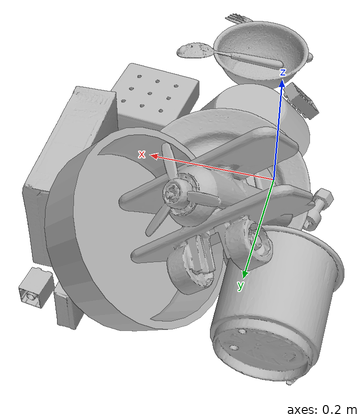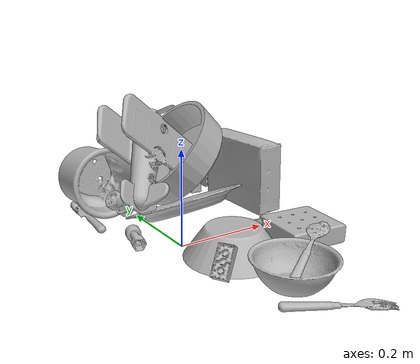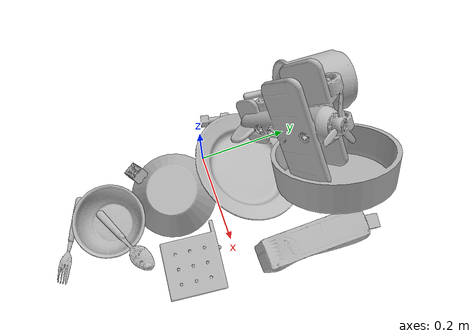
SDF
<sdf version="1.4">
  <world name="default">
    <light name="light1" type="point">
      <pose>0 0 1 0 0 0</pose>
      <diffuse>3 3 3 1</diffuse>
      <specular>3 3 3 1</specular>
    </light>
    <light name="light2" type="point">
      <pose>0 0.5 2 0 0 0</pose>
      <diffuse>1 1 1 1</diffuse>
      <specular>1 1 1 1</specular>
    </light>
    <light name="light3" type="point">
      <pose>0 0.5 2 0 0 0</pose>
      <diffuse>3 3 3 1</diffuse>
      <specular>3 3 3 1</specular>
    </light>
    <scene>
      <ambient>0.7 0.7 0.7</ambient>
    </scene>
    <model name="plate1">
      <link name="link_plate1">
        <collision name="default">
          <geometry>
            <mesh>
              <uri>model://plate/collision_meshes/collision.obj</uri>
              <scale>1.0 1.0 1.0</scale>
            </mesh>
          </geometry>
          <surface>
            <friction>
              <ode>
                <mu>0.5</mu>
                <mu2>0.5</mu2>
              </ode>
            </friction>
          <contact>
        <ode>
            <max_vel>0</max_vel>
            <min_depth>0.0001</min_depth>
            <kp>1e8</kp>
        </ode>
    </contact></surface>
        </collision>
        <visual name="default">
          <geometry>
            <mesh>
              <uri>model://plate/visual_meshes/visual.dae</uri>
              <scale>1.0 1.0 1.0</scale>
            </mesh>
          </geometry>
        </visual>
        <inertial>
          <mass>0.1516857147216797</mass>
          <pose>-0.0006044649053364992 0.00027825761935673654 -0.0010561972158029675 0.002218765199568956 -0.003225488596237322 0.4526153800388047</pose>
          <inertia>
            <ixx>0.00070958876</ixx>
            <iyy>0.0007028018</iyy>
            <izz>0.00138785</izz>
            <ixy>0</ixy>
            <ixz>0</ixz>
            <iyz>0</iyz>
          </inertia>
        </inertial>
      </link>
      <pose>0.06245071068406105 0.08986993879079819 0.0458495207130909 -0.3634399214350289 0.22294625340855276 0.7212696434519148</pose>
    </model>
    <model name="plate2">
      <link name="link_plate2">
        <collision name="default">
          <geometry>
            <mesh>
              <uri>model://pan_tefal/collision_meshes/collision.obj</uri>
              <scale>1.0 1.0 1.0</scale>
            </mesh>
          </geometry>
          <surface>
            <friction>
              <ode>
                <mu>0.5</mu>
                <mu2>0.5</mu2>
              </ode>
            </friction>
          <contact>
        <ode>
            <max_vel>0</max_vel>
            <min_depth>0.0001</min_depth>
            <kp>1e8</kp>
        </ode>
    </contact></surface>
        </collision>
        <visual name="default">
          <geometry>
            <mesh>
              <uri>model://pan_tefal/visual_meshes/visual.dae</uri>
              <scale>1.0 1.0 1.0</scale>
            </mesh>
          </geometry>
        </visual>
        <inertial>
          <mass>1.0862284898757935</mass>
          <pose>-0.00018001910939347 3.2794348953757435e-05 -0.00851493515074253 0.0008190334899032376 -0.0003301482999058744 -0.3318501395419688</pose>
          <inertia>
            <ixx>0.0074981838</ixx>
            <iyy>0.007546525</iyy>
            <izz>0.013802713</izz>
            <ixy>0</ixy>
            <ixz>0</ixz>
            <iyz>0</iyz>
          </inertia>
        </inertial>
      </link>
      <pose>0.1341967135667801 0.25240156054496765 0.11505033820867538 -0.539419658374956 0.6821728670216739 2.2376507688527485</pose>
    </model>
    <model name="bowl1">
      <link name="link_bowl1">
        <collision name="default">
          <geometry>
            <mesh>
              <uri>model://bowl_a/collision_meshes/collision.obj</uri>
              <scale>1.0 1.0 1.0</scale>
            </mesh>
          </geometry>
          <surface>
            <friction>
              <ode>
                <mu>0.5</mu>
                <mu2>0.5</mu2>
              </ode>
            </friction>
          <contact>
        <ode>
            <max_vel>0</max_vel>
            <min_depth>0.0001</min_depth>
            <kp>1e8</kp>
        </ode>
    </contact></surface>
        </collision>
        <visual name="default">
          <geometry>
            <mesh>
              <uri>model://bowl_a/visual_meshes/visual.dae</uri>
              <scale>1.0 1.0 1.0</scale>
            </mesh>
          </geometry>
        </visual>
        <inertial>
          <mass>0.23323877155780792</mass>
          <pose>0.0002786752884276211 4.7312129026977345e-05 -0.001376529224216938 -0.000980538139416196 -0.00109382495954127 -0.19123674059098103</pose>
          <inertia>
            <ixx>0.0006640416</ixx>
            <iyy>0.0006681184</iyy>
            <izz>0.0011810234</izz>
            <ixy>0</ixy>
            <ixz>0</ixz>
            <iyz>0</iyz>
          </inertia>
        </inertial>
      </link>
      <pose>0.06078092008829117 -0.09050079435110092 0.03010202758014202 3.1415926424217617 -3.3725084385934495e-08 1.5134004945815183</pose>
    </model>
    <model name="bowl2">
      <link name="link_bowl2">
        <collision name="default">
          <geometry>
            <mesh>
              <uri>model://bowl/collision_meshes/collision.obj</uri>
              <scale>1.0 1.0 1.0</scale>
            </mesh>
          </geometry>
          <surface>
            <friction>
              <ode>
                <mu>0.5</mu>
                <mu2>0.5</mu2>
              </ode>
            </friction>
          <contact>
        <ode>
            <max_vel>0</max_vel>
            <min_depth>0.0001</min_depth>
            <kp>1e8</kp>
        </ode>
    </contact></surface>
        </collision>
        <visual name="default">
          <geometry>
            <mesh>
              <uri>model://bowl/visual_meshes/visual.dae</uri>
              <scale>1.0 1.0 1.0</scale>
            </mesh>
          </geometry>
        </visual>
        <inertial>
          <mass>0.08787161856889725</mass>
          <pose>0.00020445531117729843 -0.0010302038863301277 -0.0008042651461437345 -0.015764035308279474 0.014546860922519275 0.7140443952173783</pose>
          <inertia>
            <ixx>0.00020184812</ixx>
            <iyy>0.00019733804</iyy>
            <izz>0.00033957793</izz>
            <ixy>0</ixy>
            <ixz>0</ixz>
            <iyz>0</iyz>
          </inertia>
        </inertial>
      </link>
      <pose>0.07927274703979492 -0.24211183190345764 0.027779992669820786 2.0532769593252184e-07 -1.375032119851499e-07 2.532003582893883</pose>
    </model>
    <model name="silverware1">
      <link name="link_silverware1">
        <collision name="default">
          <geometry>
            <mesh>
              <uri>model://spoon/collision_meshes/collision.obj</uri>
              <scale>1.0 1.0 1.0</scale>
            </mesh>
          </geometry>
          <surface>
            <friction>
              <ode>
                <mu>0.5</mu>
                <mu2>0.5</mu2>
              </ode>
            </friction>
          <contact>
        <ode>
            <max_vel>0</max_vel>
            <min_depth>0.0001</min_depth>
            <kp>1e8</kp>
        </ode>
    </contact></surface>
        </collision>
        <visual name="default">
          <geometry>
            <mesh>
              <uri>model://spoon/visual_meshes/visual.dae</uri>
              <scale>1.0 1.0 1.0</scale>
            </mesh>
          </geometry>
        </visual>
        <inertial>
          <mass>0.028818774968385696</mass>
          <pose>-0.0055263228714466095 -0.0016034181462600827 -0.0007271657814271748 0.03521556092832266 -0.039065843026344464 0.006150610888934851</pose>
          <inertia>
            <ixx>1.6029475e-06</ixx>
            <iyy>0.0001096545</iyy>
            <izz>0.000110445</izz>
            <ixy>0</ixy>
            <ixz>0</ixz>
            <iyz>0</iyz>
          </inertia>
        </inertial>
      </link>
      <pose>0.12611348927021027 -0.2258870005607605 0.0422368049621582 3.141534241180517 -0.39406915479986193 0.4895743584536385</pose>
    </model>
    <model name="box1">
      <link name="link_box1">
        <collision name="default">
          <geometry>
            <mesh>
              <uri>model://cracker_box/collision_meshes/collision.obj</uri>
              <scale>1.0 1.0 1.0</scale>
            </mesh>
          </geometry>
          <surface>
            <friction>
              <ode>
                <mu>0.5</mu>
                <mu2>0.5</mu2>
              </ode>
            </friction>
          <contact>
        <ode>
            <max_vel>0</max_vel>
            <min_depth>0.0001</min_depth>
            <kp>1e8</kp>
        </ode>
    </contact></surface>
        </collision>
        <visual name="default">
          <geometry>
            <mesh>
              <uri>model://cracker_box/visual_meshes/visual.dae</uri>
              <scale>1.0 1.0 1.0</scale>
            </mesh>
          </geometry>
        </visual>
        <inertial>
          <mass>2.9781224727630615</mass>
          <pose>0.0009464174509048462 0.00025434247800149024 -0.0017029534792527556 -0.0003162077703261406 -0.01110649239447325 0.0025467938390949236</pose>
          <inertia>
            <ixx>0.007575013</ixx>
            <iyy>0.012507835</iyy>
            <izz>0.017849829</izz>
            <ixy>0</ixy>
            <ixz>0</ixz>
            <iyz>0</iyz>
          </inertia>
        </inertial>
      </link>
      <pose>0.26418522000312805 0.15093952417373657 0.0817573294043541 1.5452751065775505 0.009048370541461431 1.5911989401384015</pose>
    </model>
    <model name="box2">
      <link name="link_box2">
        <collision name="default">
          <geometry>
            <mesh>
              <uri>model://gelatin_box/collision_meshes/collision.obj</uri>
              <scale>1.0 1.0 1.0</scale>
            </mesh>
          </geometry>
          <surface>
            <friction>
              <ode>
                <mu>0.5</mu>
                <mu2>0.5</mu2>
              </ode>
            </friction>
          <contact>
        <ode>
            <max_vel>0</max_vel>
            <min_depth>0.0001</min_depth>
            <kp>1e8</kp>
        </ode>
    </contact></surface>
        </collision>
        <visual name="default">
          <geometry>
            <mesh>
              <uri>model://gelatin_box/visual_meshes/visual.dae</uri>
              <scale>1.0 1.0 1.0</scale>
            </mesh>
          </geometry>
        </visual>
        <inertial>
          <mass>0.16266882419586182</mass>
          <pose>0.0004319618456065655 0.00011156871914863586 -0.0003640321083366871 -0.0010503720968416132 -0.004755819155016646 0.016440559472150423</pose>
          <inertia>
            <ixx>0.00011483092</ixx>
            <iyy>8.202313e-05</iyy>
            <izz>0.00017479825</izz>
            <ixy>0</ixy>
            <ixz>0</ixz>
            <iyz>0</iyz>
          </inertia>
        </inertial>
      </link>
      <pose>0.20647470653057098 0.3034389913082123 0.03643916919827461 0.21417210382335458 -1.5414478214880414 2.8516760677123223</pose>
    </model>
    <model name="cup1">
      <link name="link_cup1">
        <collision name="default">
          <geometry>
            <mesh>
              <uri>model://f_cups/collision_meshes/collision.obj</uri>
              <scale>2.0 2.0 2.0</scale>
            </mesh>
          </geometry>
          <surface>
            <friction>
              <ode>
                <mu>0.5</mu>
                <mu2>0.5</mu2>
              </ode>
            </friction>
          <contact>
        <ode>
            <max_vel>0</max_vel>
            <min_depth>0.0001</min_depth>
            <kp>1e8</kp>
        </ode>
    </contact></surface>
        </collision>
        <visual name="default">
          <geometry>
            <mesh>
              <uri>model://f_cups/visual_meshes/visual.dae</uri>
              <scale>2.0 2.0 2.0</scale>
            </mesh>
          </geometry>
        </visual>
        <inertial>
          <mass>0.6683602333068848</mass>
          <pose>-0.006342936307191849 -0.0012480152072384953 -0.0073110745288431644 0.7862253042657107 -0.260793604503958 -0.18237387444081576</pose>
          <inertia>
            <ixx>0.0025131067</ixx>
            <iyy>0.0026362767</iyy>
            <izz>0.0027444381</izz>
            <ixy>0</ixy>
            <ixz>0</ixz>
            <iyz>0</iyz>
          </inertia>
        </inertial>
      </link>
      <pose>-0.0575474351644516 0.2924874424934387 0.07423746585845947 1.3449884955098252 -1.139750258934319 0.22519969987253097</pose>
    </model>
    <model name="silverware2">
      <link name="link_silverware2">
        <collision name="default">
          <geometry>
            <mesh>
              <uri>model://knife/collision_meshes/collision.obj</uri>
              <scale>1.0 1.0 1.0</scale>
            </mesh>
          </geometry>
          <surface>
            <friction>
              <ode>
                <mu>0.5</mu>
                <mu2>0.5</mu2>
              </ode>
            </friction>
          <contact>
        <ode>
            <max_vel>0</max_vel>
            <min_depth>0.0001</min_depth>
            <kp>1e8</kp>
        </ode>
    </contact></surface>
        </collision>
        <visual name="default">
          <geometry>
            <mesh>
              <uri>model://knife/visual_meshes/visual.dae</uri>
              <scale>1.0 1.0 1.0</scale>
            </mesh>
          </geometry>
        </visual>
        <inertial>
          <mass>0.03087119571864605</mass>
          <pose>-0.023785250261425972 0.0015275123296305537 5.062009586254135e-05 0.07305987484925712 0.017248420899959087 -0.007409824084002247</pose>
          <inertia>
            <ixx>8.762499e-07</ixx>
            <iyy>0.000118602155</iyy>
            <izz>0.00011888435</izz>
            <ixy>0</ixy>
            <ixz>0</ixz>
            <iyz>0</iyz>
          </inertia>
        </inertial>
      </link>
      <pose>-0.10451760143041611 0.24753904342651367 0.005810624919831753 2.889423160444601 0.02592713085847666 1.5191154427884428</pose>
    </model>
    <model name="silverware3">
      <link name="link_silverware3">
        <collision name="default">
          <geometry>
            <mesh>
              <uri>model://fork/collision_meshes/collision.obj</uri>
              <scale>1.0 1.0 1.0</scale>
            </mesh>
          </geometry>
          <surface>
            <friction>
              <ode>
                <mu>0.5</mu>
                <mu2>0.5</mu2>
              </ode>
            </friction>
          <contact>
        <ode>
            <max_vel>0</max_vel>
            <min_depth>0.0001</min_depth>
            <kp>1e8</kp>
        </ode>
    </contact></surface>
        </collision>
        <visual name="default">
          <geometry>
            <mesh>
              <uri>model://fork/visual_meshes/visual.dae</uri>
              <scale>1.0 1.0 1.0</scale>
            </mesh>
          </geometry>
        </visual>
        <inertial>
          <mass>0.015284496359527111</mass>
          <pose>-0.02957003004848957 0.00046588233090005815 0.00032188600744120777 -0.013550803329795006 -0.010977829430356707 0.014453895799763906</pose>
          <inertia>
            <ixx>5.358081e-07</ixx>
            <iyy>3.9903432e-05</iyy>
            <izz>4.0143095e-05</izz>
            <ixy>0</ixy>
            <ixz>0</ixz>
            <iyz>0</iyz>
          </inertia>
        </inertial>
      </link>
      <pose>0.08493807166814804 -0.34241193532943726 0.007446605246514082 -3.0634992057047357 0.0028359727101811964 -0.49529913576075296</pose>
    </model>
    <model name="toy1">
      <link name="link_toy1">
        <collision name="default">
          <geometry>
            <mesh>
              <uri>model://c_toy_airplane/collision_meshes/collision.obj</uri>
              <scale>1.0 1.0 1.0</scale>
            </mesh>
          </geometry>
          <surface>
            <friction>
              <ode>
                <mu>0.5</mu>
                <mu2>0.5</mu2>
              </ode>
            </friction>
          <contact>
        <ode>
            <max_vel>0</max_vel>
            <min_depth>0.0001</min_depth>
            <kp>1e8</kp>
        </ode>
    </contact></surface>
        </collision>
        <visual name="default">
          <geometry>
            <mesh>
              <uri>model://c_toy_airplane/visual_meshes/visual.dae</uri>
              <scale>1.0 1.0 1.0</scale>
            </mesh>
          </geometry>
        </visual>
        <inertial>
          <mass>0.014899278059601784</mass>
          <pose>-0.0002302424400113523 -4.428088118402229e-07 -0.006080529186874628 -0.00619304524108313 -0.016797611161866028 0.7655100812139064</pose>
          <inertia>
            <ixx>6.841441e-06</ixx>
            <iyy>6.822133e-06</iyy>
            <izz>1.6062353e-06</izz>
            <ixy>0</ixy>
            <ixz>0</ixz>
            <iyz>0</iyz>
          </inertia>
        </inertial>
      </link>
      <pose>-0.07473909854888916 0.056203145533800125 0.014215897768735886 -1.7880955071130409 1.3247734150885038 2.6908488873068737</pose>
    </model>
    <model name="toy2">
      <link name="link_toy2">
        <collision name="default">
          <geometry>
            <mesh>
              <uri>model://nine_hole_peg_test/collision_meshes/collision.obj</uri>
              <scale>1.0 1.0 1.0</scale>
            </mesh>
          </geometry>
          <surface>
            <friction>
              <ode>
                <mu>0.5</mu>
                <mu2>0.5</mu2>
              </ode>
            </friction>
          <contact>
        <ode>
            <max_vel>0</max_vel>
            <min_depth>0.0001</min_depth>
            <kp>1e8</kp>
        </ode>
    </contact></surface>
        </collision>
        <visual name="default">
          <geometry>
            <mesh>
              <uri>model://nine_hole_peg_test/visual_meshes/visual.dae</uri>
              <scale>1.0 1.0 1.0</scale>
            </mesh>
          </geometry>
        </visual>
        <inertial>
          <mass>0.8674170970916748</mass>
          <pose>-0.004617386031895876 -0.009647614322602749 2.6460689696250483e-05 -0.0014666783129250742 0.0007194188660534222 -0.6342410037611789</pose>
          <inertia>
            <ixx>0.0013563493</ixx>
            <iyy>0.0012664091</iyy>
            <izz>0.0023767245</izz>
            <ixy>0</ixy>
            <ixz>0</ixz>
            <iyz>0</iyz>
          </inertia>
        </inertial>
      </link>
      <pose>0.2208571583032608 -0.09130722284317017 0.020771007984876633 -8.063450146568065e-10 9.398164912622992e-09 1.4781814720164281</pose>
    </model>
    <model name="toy3">
      <link name="link_toy3">
        <collision name="default">
          <geometry>
            <mesh>
              <uri>model://a_toy_airplane/collision_meshes/collision.obj</uri>
              <scale>1.0 1.0 1.0</scale>
            </mesh>
          </geometry>
          <surface>
            <friction>
              <ode>
                <mu>0.5</mu>
                <mu2>0.5</mu2>
              </ode>
            </friction>
          <contact>
        <ode>
            <max_vel>0</max_vel>
            <min_depth>0.0001</min_depth>
            <kp>1e8</kp>
        </ode>
    </contact></surface>
        </collision>
        <visual name="default">
          <geometry>
            <mesh>
              <uri>model://a_toy_airplane/visual_meshes/visual.dae</uri>
              <scale>1.0 1.0 1.0</scale>
            </mesh>
          </geometry>
        </visual>
        <inertial>
          <mass>1.0043106079101562</mass>
          <pose>0.02516508847475052 -0.003707321360707283 -0.0011962434509769082 -0.01201694293172648 -0.14663499629613377 0.0041490900747424425</pose>
          <inertia>
            <ixx>0.0036471337</ixx>
            <iyy>0.0053146123</iyy>
            <izz>0.0062227584</izz>
            <ixy>0</ixy>
            <ixz>0</ixz>
            <iyz>0</iyz>
          </inertia>
        </inertial>
      </link>
      <pose>0.016673970967531204 0.1903739720582962 0.13501498103141785 0.8870896767759271 -0.6118705805275911 1.1055854234551565</pose>
    </model>
    <model name="toy4">
      <link name="link_toy4">
        <collision name="default">
          <geometry>
            <mesh>
              <uri>model://c_lego_duplo/collision_meshes/collision.obj</uri>
              <scale>1.0 1.0 1.0</scale>
            </mesh>
          </geometry>
          <surface>
            <friction>
              <ode>
                <mu>0.5</mu>
                <mu2>0.5</mu2>
              </ode>
            </friction>
          <contact>
        <ode>
            <max_vel>0</max_vel>
            <min_depth>0.0001</min_depth>
            <kp>1e8</kp>
        </ode>
    </contact></surface>
        </collision>
        <visual name="default">
          <geometry>
            <mesh>
              <uri>model://c_lego_duplo/visual_meshes/visual.dae</uri>
              <scale>1.0 1.0 1.0</scale>
            </mesh>
          </geometry>
        </visual>
        <inertial>
          <mass>0.019874408841133118</mass>
          <pose>0.0003164595691487193 0.0001946465636137873 0.0010453156428411603 -0.01152079101413275 0.005900072799474436 0.031100350485514378</pose>
          <inertia>
            <ixx>7.648045e-06</ixx>
            <iyy>2.443061e-06</iyy>
            <izz>8.937529e-06</izz>
            <ixy>0</ixy>
            <ixz>0</ixz>
            <iyz>0</iyz>
          </inertia>
        </inertial>
      </link>
      <pose>-0.007564449682831764 -0.15578366816043854 0.029937881976366043 2.237145457807532 0.013499744300100423 2.1506605955137292</pose>
    </model>
    <model name="toy5">
      <link name="link_toy5">
        <collision name="default">
          <geometry>
            <mesh>
              <uri>model://b_lego_duplo/collision_meshes/collision.obj</uri>
              <scale>1.0 1.0 1.0</scale>
            </mesh>
          </geometry>
          <surface>
            <friction>
              <ode>
                <mu>0.5</mu>
                <mu2>0.5</mu2>
              </ode>
            </friction>
          <contact>
        <ode>
            <max_vel>0</max_vel>
            <min_depth>0.0001</min_depth>
            <kp>1e8</kp>
        </ode>
    </contact></surface>
        </collision>
        <visual name="default">
          <geometry>
            <mesh>
              <uri>model://b_lego_duplo/visual_meshes/visual.dae</uri>
              <scale>1.0 1.0 1.0</scale>
            </mesh>
          </geometry>
        </visual>
        <inertial>
          <mass>0.031542204320430756</mass>
          <pose>-0.0001105302435462363 -9.152341590379365e-06 0.001929428894072771 -0.03749493031375769 -0.026354084635952003 0.4518990108557965</pose>
          <inertia>
            <ixx>6.4553496e-06</ixx>
            <iyy>6.4987444e-06</iyy>
            <izz>5.7515063e-06</izz>
            <ixy>0</ixy>
            <ixz>0</ixz>
            <iyz>0</iyz>
          </inertia>
        </inertial>
      </link>
      <pose>0.2665029466152191 0.303037166595459 0.01618051901459694 0.04258273659611101 -1.5623966488003531 1.4073751185824002</pose>
    </model>
  <physics type="ode">
      <max_contacts>50</max_contacts>
      <ode>
        <solver>
          <type>quick</type>
          <iters>75</iters>
        </solver>
        <constraints>
          <contact_max_correcting_vel>0</contact_max_correcting_vel>
          <contact_surface_layer>0</contact_surface_layer>
        </constraints>
      </ode>
    </physics></world>
</sdf>
